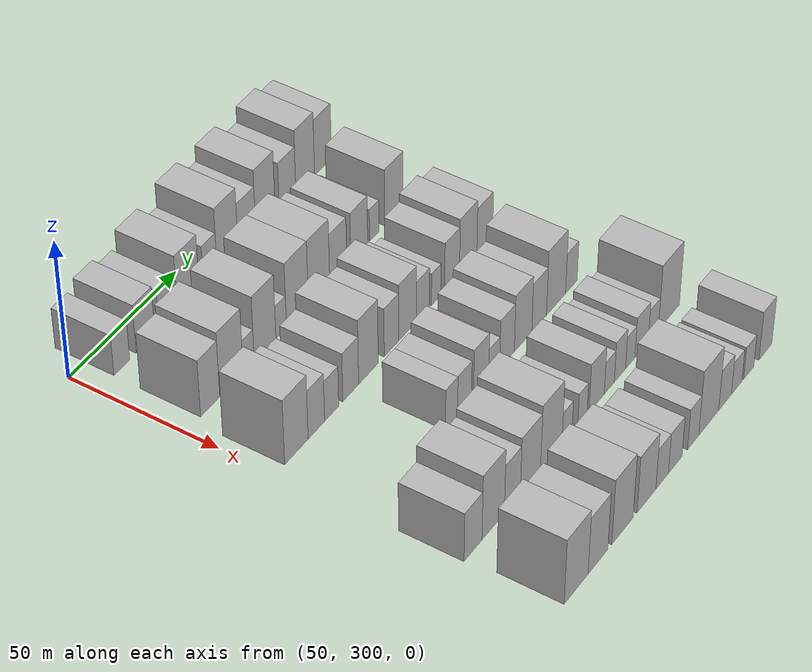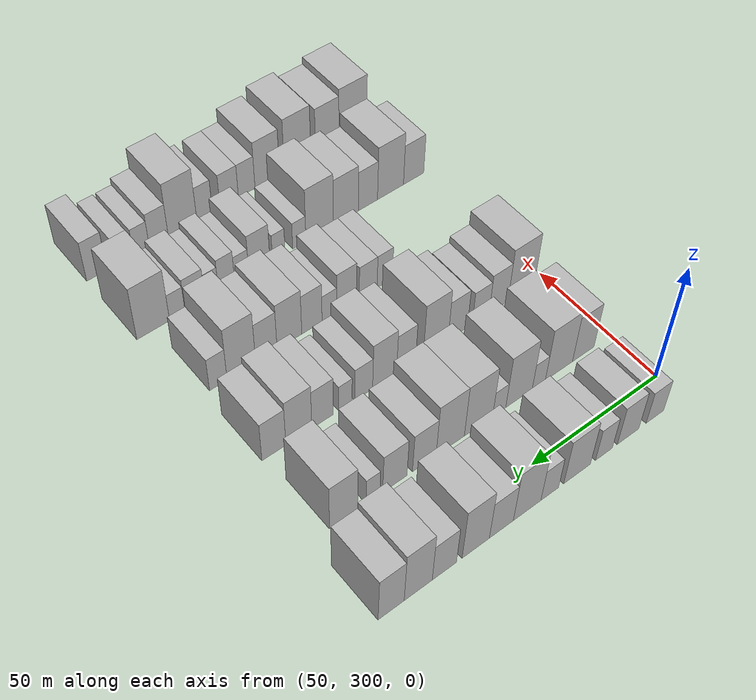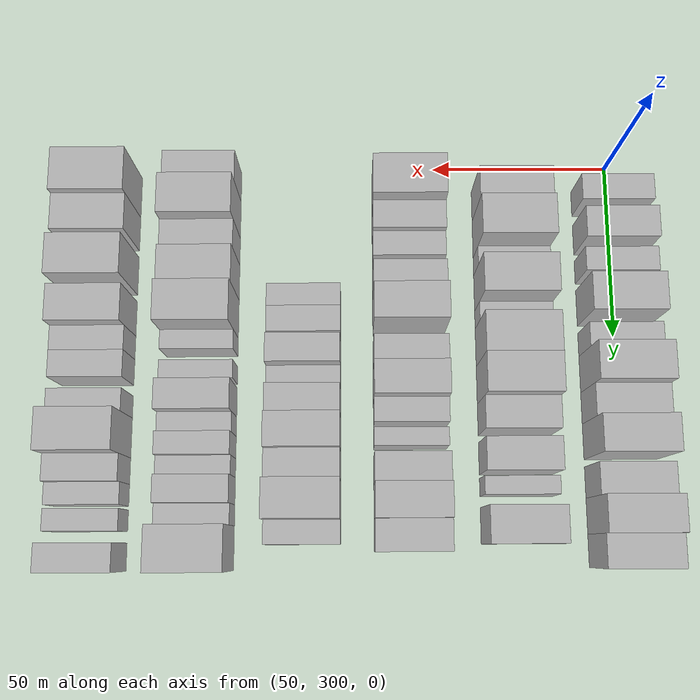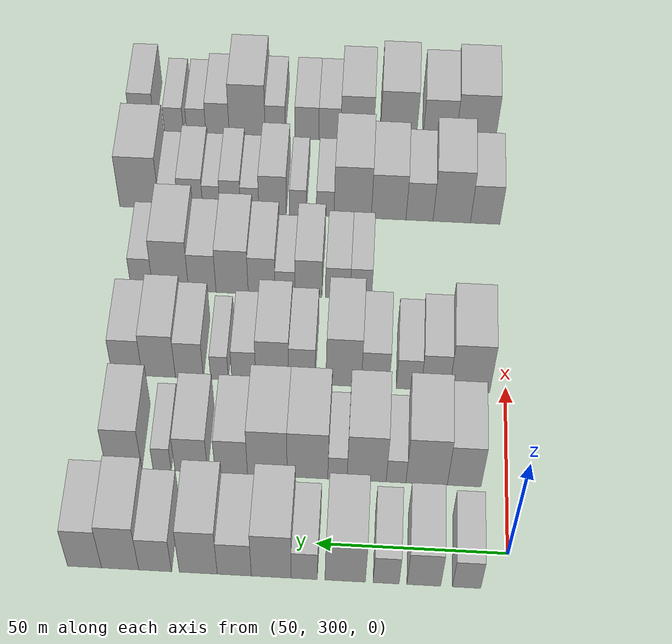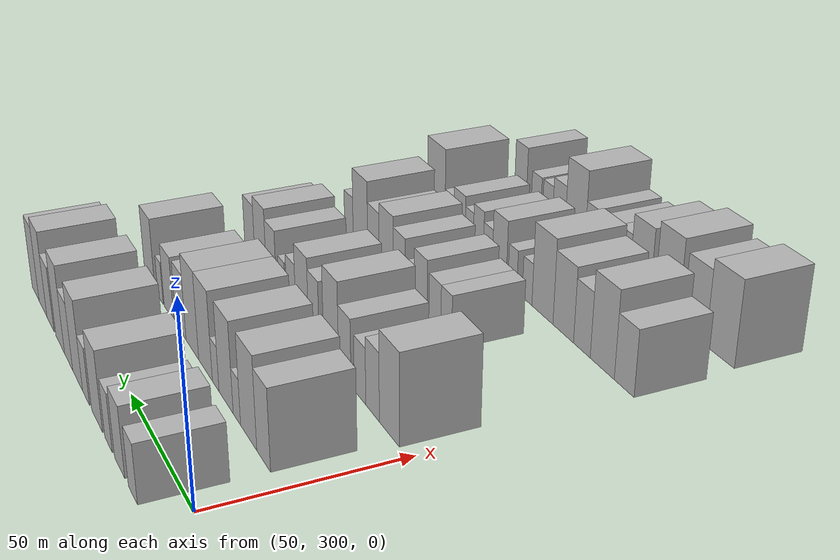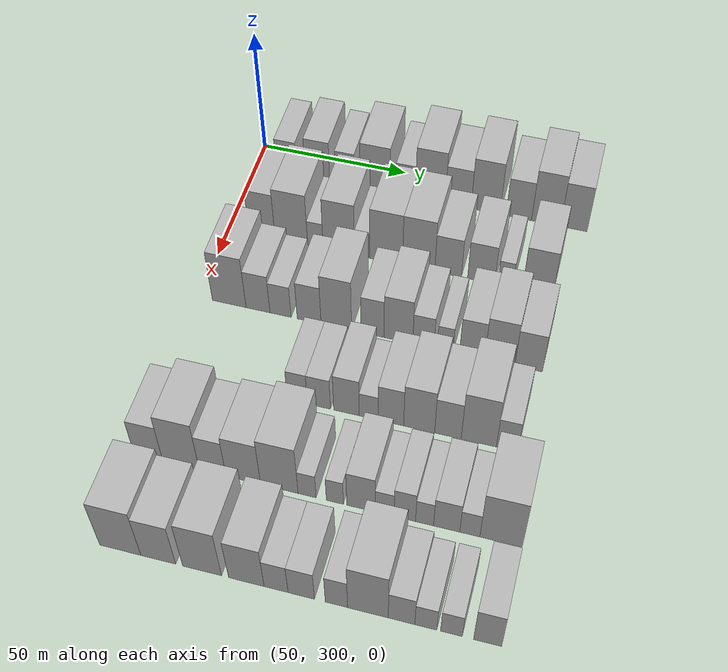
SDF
<sdf version="1.6">
 <world name="default">
  <model name="building_96">
   <static>1</static>
   <pose>50.0000 310.7664 0 0.000000 0.000000 0.000000</pose>
   <link name="link">
    <pose>0 0 7.50 0 0 0</pose>
    <collision name="collision"><geometry><box><size>20.0000 7.2658 15.0000</size></box></geometry></collision>
    <visual name="visual">
     <cast_shadows>0</cast_shadows>
     <geometry><box><size>20.0000 7.2658 15.0000</size></box></geometry>
     <material>
      <script>
       <uri>model://HANNAS_wall/materials/scripts</uri>
       <uri>model://HANNAS_wall/materials/textures</uri>
       <name>vrc/HANNAS_wall</name>
      </script>
     </material>
    </visual>
   </link>
  </model>
  <model name="building_97">
   <static>1</static>
   <pose>50.0000 321.7417 0 0.000000 0.000000 0.000000</pose>
   <link name="link">
    <pose>0 0 9.00 0 0 0</pose>
    <collision name="collision"><geometry><box><size>20.0000 8.6847 18.0000</size></box></geometry></collision>
    <visual name="visual">
     <cast_shadows>0</cast_shadows>
     <geometry><box><size>20.0000 8.6847 18.0000</size></box></geometry>
     <material>
      <script>
       <uri>model://HANNAS_wall/materials/scripts</uri>
       <uri>model://HANNAS_wall/materials/textures</uri>
       <name>vrc/HANNAS_wall</name>
      </script>
     </material>
    </visual>
   </link>
  </model>
  <model name="building_98">
   <static>1</static>
   <pose>50.0000 331.4283 0 0.000000 0.000000 0.000000</pose>
   <link name="link">
    <pose>0 0 7.50 0 0 0</pose>
    <collision name="collision"><geometry><box><size>20.0000 6.6887 15.0000</size></box></geometry></collision>
    <visual name="visual">
     <cast_shadows>0</cast_shadows>
     <geometry><box><size>20.0000 6.6887 15.0000</size></box></geometry>
     <material>
      <script>
       <uri>model://HANNAS_wall/materials/scripts</uri>
       <uri>model://HANNAS_wall/materials/textures</uri>
       <name>vrc/HANNAS_wall</name>
      </script>
     </material>
    </visual>
   </link>
  </model>
  <model name="building_99">
   <static>1</static>
   <pose>50.0000 341.9598 0 0.000000 0.000000 0.000000</pose>
   <link name="link">
    <pose>0 0 10.50 0 0 0</pose>
    <collision name="collision"><geometry><box><size>20.0000 10.3742 21.0000</size></box></geometry></collision>
    <visual name="visual">
     <cast_shadows>0</cast_shadows>
     <geometry><box><size>20.0000 10.3742 21.0000</size></box></geometry>
     <material>
      <script>
       <uri>model://HANNAS_wall/materials/scripts</uri>
       <uri>model://HANNAS_wall/materials/textures</uri>
       <name>vrc/HANNAS_wall</name>
      </script>
     </material>
    </visual>
   </link>
  </model>
  <model name="building_100">
   <static>1</static>
   <pose>50.0000 352.5078 0 0.000000 0.000000 0.000000</pose>
   <link name="link">
    <pose>0 0 7.50 0 0 0</pose>
    <collision name="collision"><geometry><box><size>20.0000 6.7218 15.0000</size></box></geometry></collision>
    <visual name="visual">
     <cast_shadows>0</cast_shadows>
     <geometry><box><size>20.0000 6.7218 15.0000</size></box></geometry>
     <material>
      <script>
       <uri>model://HANNAS_wall/materials/scripts</uri>
       <uri>model://HANNAS_wall/materials/textures</uri>
       <name>vrc/HANNAS_wall</name>
      </script>
     </material>
    </visual>
   </link>
  </model>
  <model name="building_101">
   <static>1</static>
   <pose>50.0000 361.0179 0 0.000000 0.000000 0.000000</pose>
   <link name="link">
    <pose>0 0 12.00 0 0 0</pose>
    <collision name="collision"><geometry><box><size>20.0000 10.2985 24.0000</size></box></geometry></collision>
    <visual name="visual">
     <cast_shadows>0</cast_shadows>
     <geometry><box><size>20.0000 10.2985 24.0000</size></box></geometry>
     <material>
      <script>
       <uri>model://HANNAS_wall/materials/scripts</uri>
       <uri>model://HANNAS_wall/materials/textures</uri>
       <name>vrc/HANNAS_wall</name>
      </script>
     </material>
    </visual>
   </link>
  </model>
  <model name="building_102">
   <static>1</static>
   <pose>50.0000 370.5619 0 0.000000 0.000000 0.000000</pose>
   <link name="link">
    <pose>0 0 9.00 0 0 0</pose>
    <collision name="collision"><geometry><box><size>20.0000 8.7894 18.0000</size></box></geometry></collision>
    <visual name="visual">
     <cast_shadows>0</cast_shadows>
     <geometry><box><size>20.0000 8.7894 18.0000</size></box></geometry>
     <material>
      <script>
       <uri>model://HANNAS_wall/materials/scripts</uri>
       <uri>model://HANNAS_wall/materials/textures</uri>
       <name>vrc/HANNAS_wall</name>
      </script>
     </material>
    </visual>
   </link>
  </model>
  <model name="building_103">
   <static>1</static>
   <pose>50.0000 379.8690 0 0.000000 0.000000 0.000000</pose>
   <link name="link">
    <pose>0 0 12.00 0 0 0</pose>
    <collision name="collision"><geometry><box><size>20.0000 9.8248 24.0000</size></box></geometry></collision>
    <visual name="visual">
     <cast_shadows>0</cast_shadows>
     <geometry><box><size>20.0000 9.8248 24.0000</size></box></geometry>
     <material>
      <script>
       <uri>model://HANNAS_wall/materials/scripts</uri>
       <uri>model://HANNAS_wall/materials/textures</uri>
       <name>vrc/HANNAS_wall</name>
      </script>
     </material>
    </visual>
   </link>
  </model>
  <model name="building_104">
   <static>1</static>
   <pose>50.0000 391.0441 0 0.000000 0.000000 0.000000</pose>
   <link name="link">
    <pose>0 0 9.00 0 0 0</pose>
    <collision name="collision"><geometry><box><size>20.0000 8.5254 18.0000</size></box></geometry></collision>
    <visual name="visual">
     <cast_shadows>0</cast_shadows>
     <geometry><box><size>20.0000 8.5254 18.0000</size></box></geometry>
     <material>
      <script>
       <uri>model://HANNAS_wall/materials/scripts</uri>
       <uri>model://HANNAS_wall/materials/textures</uri>
       <name>vrc/HANNAS_wall</name>
      </script>
     </material>
    </visual>
   </link>
  </model>
  <model name="building_105">
   <static>1</static>
   <pose>50.0000 400.1430 0 0.000000 0.000000 0.000000</pose>
   <link name="link">
    <pose>0 0 12.00 0 0 0</pose>
    <collision name="collision"><geometry><box><size>20.0000 9.6725 24.0000</size></box></geometry></collision>
    <visual name="visual">
     <cast_shadows>0</cast_shadows>
     <geometry><box><size>20.0000 9.6725 24.0000</size></box></geometry>
     <material>
      <script>
       <uri>model://HANNAS_wall/materials/scripts</uri>
       <uri>model://HANNAS_wall/materials/textures</uri>
       <name>vrc/HANNAS_wall</name>
      </script>
     </material>
    </visual>
   </link>
  </model>
  <model name="building_106">
   <static>1</static>
   <pose>50.0000 409.3942 0 0.000000 0.000000 0.000000</pose>
   <link name="link">
    <pose>0 0 10.50 0 0 0</pose>
    <collision name="collision"><geometry><box><size>20.0000 8.8299 21.0000</size></box></geometry></collision>
    <visual name="visual">
     <cast_shadows>0</cast_shadows>
     <geometry><box><size>20.0000 8.8299 21.0000</size></box></geometry>
     <material>
      <script>
       <uri>model://HANNAS_wall/materials/scripts</uri>
       <uri>model://HANNAS_wall/materials/textures</uri>
       <name>vrc/HANNAS_wall</name>
      </script>
     </material>
    </visual>
   </link>
  </model>
  <model name="building_208">
   <static>1</static>
   <pose>79.0000 311.4381 0 0.000000 0.000000 0.000000</pose>
   <link name="link">
    <pose>0 0 10.50 0 0 0</pose>
    <collision name="collision"><geometry><box><size>20.0000 8.9653 21.0000</size></box></geometry></collision>
    <visual name="visual">
     <cast_shadows>0</cast_shadows>
     <geometry><box><size>20.0000 8.9653 21.0000</size></box></geometry>
     <material>
      <script>
       <uri>model://HANNAS_wall/materials/scripts</uri>
       <uri>model://HANNAS_wall/materials/textures</uri>
       <name>vrc/HANNAS_wall</name>
      </script>
     </material>
    </visual>
   </link>
  </model>
  <model name="building_209">
   <static>1</static>
   <pose>79.0000 321.4525 0 0.000000 0.000000 0.000000</pose>
   <link name="link">
    <pose>0 0 12.00 0 0 0</pose>
    <collision name="collision"><geometry><box><size>20.0000 11.0635 24.0000</size></box></geometry></collision>
    <visual name="visual">
     <cast_shadows>0</cast_shadows>
     <geometry><box><size>20.0000 11.0635 24.0000</size></box></geometry>
     <material>
      <script>
       <uri>model://HANNAS_wall/materials/scripts</uri>
       <uri>model://HANNAS_wall/materials/textures</uri>
       <name>vrc/HANNAS_wall</name>
      </script>
     </material>
    </visual>
   </link>
  </model>
  <model name="building_210">
   <static>1</static>
   <pose>79.0000 329.6152 0 0.000000 0.000000 0.000000</pose>
   <link name="link">
    <pose>0 0 6.00 0 0 0</pose>
    <collision name="collision"><geometry><box><size>20.0000 5.2619 12.0000</size></box></geometry></collision>
    <visual name="visual">
     <cast_shadows>0</cast_shadows>
     <geometry><box><size>20.0000 5.2619 12.0000</size></box></geometry>
     <material>
      <script>
       <uri>model://HANNAS_wall/materials/scripts</uri>
       <uri>model://HANNAS_wall/materials/textures</uri>
       <name>vrc/HANNAS_wall</name>
      </script>
     </material>
    </visual>
   </link>
  </model>
  <model name="building_211">
   <static>1</static>
   <pose>79.0000 337.4931 0 0.000000 0.000000 0.000000</pose>
   <link name="link">
    <pose>0 0 12.00 0 0 0</pose>
    <collision name="collision"><geometry><box><size>20.0000 10.4937 24.0000</size></box></geometry></collision>
    <visual name="visual">
     <cast_shadows>0</cast_shadows>
     <geometry><box><size>20.0000 10.4937 24.0000</size></box></geometry>
     <material>
      <script>
       <uri>model://HANNAS_wall/materials/scripts</uri>
       <uri>model://HANNAS_wall/materials/textures</uri>
       <name>vrc/HANNAS_wall</name>
      </script>
     </material>
    </visual>
   </link>
  </model>
  <model name="building_212">
   <static>1</static>
   <pose>79.0000 345.2966 0 0.000000 0.000000 0.000000</pose>
   <link name="link">
    <pose>0 0 6.00 0 0 0</pose>
    <collision name="collision"><geometry><box><size>20.0000 5.1133 12.0000</size></box></geometry></collision>
    <visual name="visual">
     <cast_shadows>0</cast_shadows>
     <geometry><box><size>20.0000 5.1133 12.0000</size></box></geometry>
     <material>
      <script>
       <uri>model://HANNAS_wall/materials/scripts</uri>
       <uri>model://HANNAS_wall/materials/textures</uri>
       <name>vrc/HANNAS_wall</name>
      </script>
     </material>
    </visual>
   </link>
  </model>
  <model name="building_213">
   <static>1</static>
   <pose>79.0000 353.2895 0 0.000000 0.000000 0.000000</pose>
   <link name="link">
    <pose>0 0 12.00 0 0 0</pose>
    <collision name="collision"><geometry><box><size>20.0000 10.8726 24.0000</size></box></geometry></collision>
    <visual name="visual">
     <cast_shadows>0</cast_shadows>
     <geometry><box><size>20.0000 10.8726 24.0000</size></box></geometry>
     <material>
      <script>
       <uri>model://HANNAS_wall/materials/scripts</uri>
       <uri>model://HANNAS_wall/materials/textures</uri>
       <name>vrc/HANNAS_wall</name>
      </script>
     </material>
    </visual>
   </link>
  </model>
  <model name="building_214">
   <static>1</static>
   <pose>79.0000 364.0430 0 0.000000 0.000000 0.000000</pose>
   <link name="link">
    <pose>0 0 12.00 0 0 0</pose>
    <collision name="collision"><geometry><box><size>20.0000 10.6344 24.0000</size></box></geometry></collision>
    <visual name="visual">
     <cast_shadows>0</cast_shadows>
     <geometry><box><size>20.0000 10.6344 24.0000</size></box></geometry>
     <material>
      <script>
       <uri>model://HANNAS_wall/materials/scripts</uri>
       <uri>model://HANNAS_wall/materials/textures</uri>
       <name>vrc/HANNAS_wall</name>
      </script>
     </material>
    </visual>
   </link>
  </model>
  <model name="building_215">
   <static>1</static>
   <pose>79.0000 373.7148 0 0.000000 0.000000 0.000000</pose>
   <link name="link">
    <pose>0 0 9.00 0 0 0</pose>
    <collision name="collision"><geometry><box><size>20.0000 8.7094 18.0000</size></box></geometry></collision>
    <visual name="visual">
     <cast_shadows>0</cast_shadows>
     <geometry><box><size>20.0000 8.7094 18.0000</size></box></geometry>
     <material>
      <script>
       <uri>model://HANNAS_wall/materials/scripts</uri>
       <uri>model://HANNAS_wall/materials/textures</uri>
       <name>vrc/HANNAS_wall</name>
      </script>
     </material>
    </visual>
   </link>
  </model>
  <model name="building_216">
   <static>1</static>
   <pose>79.0000 384.4638 0 0.000000 0.000000 0.000000</pose>
   <link name="link">
    <pose>0 0 9.00 0 0 0</pose>
    <collision name="collision"><geometry><box><size>20.0000 8.7886 18.0000</size></box></geometry></collision>
    <visual name="visual">
     <cast_shadows>0</cast_shadows>
     <geometry><box><size>20.0000 8.7886 18.0000</size></box></geometry>
     <material>
      <script>
       <uri>model://HANNAS_wall/materials/scripts</uri>
       <uri>model://HANNAS_wall/materials/textures</uri>
       <name>vrc/HANNAS_wall</name>
      </script>
     </material>
    </visual>
   </link>
  </model>
  <model name="building_217">
   <static>1</static>
   <pose>79.0000 392.3045 0 0.000000 0.000000 0.000000</pose>
   <link name="link">
    <pose>0 0 6.00 0 0 0</pose>
    <collision name="collision"><geometry><box><size>20.0000 4.8927 12.0000</size></box></geometry></collision>
    <visual name="visual">
     <cast_shadows>0</cast_shadows>
     <geometry><box><size>20.0000 4.8927 12.0000</size></box></geometry>
     <material>
      <script>
       <uri>model://HANNAS_wall/materials/scripts</uri>
       <uri>model://HANNAS_wall/materials/textures</uri>
       <name>vrc/HANNAS_wall</name>
      </script>
     </material>
    </visual>
   </link>
  </model>
  <model name="building_218">
   <static>1</static>
   <pose>79.0000 402.6350 0 0.000000 0.000000 0.000000</pose>
   <link name="link">
    <pose>0 0 10.50 0 0 0</pose>
    <collision name="collision"><geometry><box><size>20.0000 9.7683 21.0000</size></box></geometry></collision>
    <visual name="visual">
     <cast_shadows>0</cast_shadows>
     <geometry><box><size>20.0000 9.7683 21.0000</size></box></geometry>
     <material>
      <script>
       <uri>model://HANNAS_wall/materials/scripts</uri>
       <uri>model://HANNAS_wall/materials/textures</uri>
       <name>vrc/HANNAS_wall</name>
      </script>
     </material>
    </visual>
   </link>
  </model>
  <model name="building_324">
   <static>1</static>
   <pose>108.0000 310.0251 0 0.000000 0.000000 0.000000</pose>
   <link name="link">
    <pose>0 0 12.00 0 0 0</pose>
    <collision name="collision"><geometry><box><size>20.0000 11.1220 24.0000</size></box></geometry></collision>
    <visual name="visual">
     <cast_shadows>0</cast_shadows>
     <geometry><box><size>20.0000 11.1220 24.0000</size></box></geometry>
     <material>
      <script>
       <uri>model://HANNAS_wall/materials/scripts</uri>
       <uri>model://HANNAS_wall/materials/textures</uri>
       <name>vrc/HANNAS_wall</name>
      </script>
     </material>
    </visual>
   </link>
  </model>
  <model name="building_325">
   <static>1</static>
   <pose>108.0000 319.5073 0 0.000000 0.000000 0.000000</pose>
   <link name="link">
    <pose>0 0 9.00 0 0 0</pose>
    <collision name="collision"><geometry><box><size>20.0000 7.8424 18.0000</size></box></geometry></collision>
    <visual name="visual">
     <cast_shadows>0</cast_shadows>
     <geometry><box><size>20.0000 7.8424 18.0000</size></box></geometry>
     <material>
      <script>
       <uri>model://HANNAS_wall/materials/scripts</uri>
       <uri>model://HANNAS_wall/materials/textures</uri>
       <name>vrc/HANNAS_wall</name>
      </script>
     </material>
    </visual>
   </link>
  </model>
  <model name="building_326">
   <static>1</static>
   <pose>108.0000 326.8674 0 0.000000 0.000000 0.000000</pose>
   <link name="link">
    <pose>0 0 7.50 0 0 0</pose>
    <collision name="collision"><geometry><box><size>20.0000 6.8778 15.0000</size></box></geometry></collision>
    <visual name="visual">
     <cast_shadows>0</cast_shadows>
     <geometry><box><size>20.0000 6.8778 15.0000</size></box></geometry>
     <material>
      <script>
       <uri>model://HANNAS_wall/materials/scripts</uri>
       <uri>model://HANNAS_wall/materials/textures</uri>
       <name>vrc/HANNAS_wall</name>
      </script>
     </material>
    </visual>
   </link>
  </model>
  <model name="building_327">
   <static>1</static>
   <pose>108.0000 336.1593 0 0.000000 0.000000 0.000000</pose>
   <link name="link">
    <pose>0 0 9.00 0 0 0</pose>
    <collision name="collision"><geometry><box><size>20.0000 7.7060 18.0000</size></box></geometry></collision>
    <visual name="visual">
     <cast_shadows>0</cast_shadows>
     <geometry><box><size>20.0000 7.7060 18.0000</size></box></geometry>
     <material>
      <script>
       <uri>model://HANNAS_wall/materials/scripts</uri>
       <uri>model://HANNAS_wall/materials/textures</uri>
       <name>vrc/HANNAS_wall</name>
      </script>
     </material>
    </visual>
   </link>
  </model>
  <model name="building_328">
   <static>1</static>
   <pose>108.0000 344.9060 0 0.000000 0.000000 0.000000</pose>
   <link name="link">
    <pose>0 0 12.00 0 0 0</pose>
    <collision name="collision"><geometry><box><size>20.0000 9.7872 24.0000</size></box></geometry></collision>
    <visual name="visual">
     <cast_shadows>0</cast_shadows>
     <geometry><box><size>20.0000 9.7872 24.0000</size></box></geometry>
     <material>
      <script>
       <uri>model://HANNAS_wall/materials/scripts</uri>
       <uri>model://HANNAS_wall/materials/textures</uri>
       <name>vrc/HANNAS_wall</name>
      </script>
     </material>
    </visual>
   </link>
  </model>
  <model name="building_329">
   <static>1</static>
   <pose>108.0000 356.4631 0 0.000000 0.000000 0.000000</pose>
   <link name="link">
    <pose>0 0 9.00 0 0 0</pose>
    <collision name="collision"><geometry><box><size>20.0000 7.3270 18.0000</size></box></geometry></collision>
    <visual name="visual">
     <cast_shadows>0</cast_shadows>
     <geometry><box><size>20.0000 7.3270 18.0000</size></box></geometry>
     <material>
      <script>
       <uri>model://HANNAS_wall/materials/scripts</uri>
       <uri>model://HANNAS_wall/materials/textures</uri>
       <name>vrc/HANNAS_wall</name>
      </script>
     </material>
    </visual>
   </link>
  </model>
  <model name="building_330">
   <static>1</static>
   <pose>108.0000 364.6842 0 0.000000 0.000000 0.000000</pose>
   <link name="link">
    <pose>0 0 10.50 0 0 0</pose>
    <collision name="collision"><geometry><box><size>20.0000 9.1152 21.0000</size></box></geometry></collision>
    <visual name="visual">
     <cast_shadows>0</cast_shadows>
     <geometry><box><size>20.0000 9.1152 21.0000</size></box></geometry>
     <material>
      <script>
       <uri>model://HANNAS_wall/materials/scripts</uri>
       <uri>model://HANNAS_wall/materials/textures</uri>
       <name>vrc/HANNAS_wall</name>
      </script>
     </material>
    </visual>
   </link>
  </model>
  <model name="building_331">
   <static>1</static>
   <pose>108.0000 372.5841 0 0.000000 0.000000 0.000000</pose>
   <link name="link">
    <pose>0 0 7.50 0 0 0</pose>
    <collision name="collision"><geometry><box><size>20.0000 6.6846 15.0000</size></box></geometry></collision>
    <visual name="visual">
     <cast_shadows>0</cast_shadows>
     <geometry><box><size>20.0000 6.6846 15.0000</size></box></geometry>
     <material>
      <script>
       <uri>model://HANNAS_wall/materials/scripts</uri>
       <uri>model://HANNAS_wall/materials/textures</uri>
       <name>vrc/HANNAS_wall</name>
      </script>
     </material>
    </visual>
   </link>
  </model>
  <model name="building_332">
   <static>1</static>
   <pose>108.0000 379.3864 0 0.000000 0.000000 0.000000</pose>
   <link name="link">
    <pose>0 0 6.00 0 0 0</pose>
    <collision name="collision"><geometry><box><size>20.0000 4.9201 12.0000</size></box></geometry></collision>
    <visual name="visual">
     <cast_shadows>0</cast_shadows>
     <geometry><box><size>20.0000 4.9201 12.0000</size></box></geometry>
     <material>
      <script>
       <uri>model://HANNAS_wall/materials/scripts</uri>
       <uri>model://HANNAS_wall/materials/textures</uri>
       <name>vrc/HANNAS_wall</name>
      </script>
     </material>
    </visual>
   </link>
  </model>
  <model name="building_333">
   <static>1</static>
   <pose>108.0000 387.7596 0 0.000000 0.000000 0.000000</pose>
   <link name="link">
    <pose>0 0 9.00 0 0 0</pose>
    <collision name="collision"><geometry><box><size>20.0000 7.8263 18.0000</size></box></geometry></collision>
    <visual name="visual">
     <cast_shadows>0</cast_shadows>
     <geometry><box><size>20.0000 7.8263 18.0000</size></box></geometry>
     <material>
      <script>
       <uri>model://HANNAS_wall/materials/scripts</uri>
       <uri>model://HANNAS_wall/materials/textures</uri>
       <name>vrc/HANNAS_wall</name>
      </script>
     </material>
    </visual>
   </link>
  </model>
  <model name="building_334">
   <static>1</static>
   <pose>108.0000 396.3158 0 0.000000 0.000000 0.000000</pose>
   <link name="link">
    <pose>0 0 10.50 0 0 0</pose>
    <collision name="collision"><geometry><box><size>20.0000 9.2860 21.0000</size></box></geometry></collision>
    <visual name="visual">
     <cast_shadows>0</cast_shadows>
     <geometry><box><size>20.0000 9.2860 21.0000</size></box></geometry>
     <material>
      <script>
       <uri>model://HANNAS_wall/materials/scripts</uri>
       <uri>model://HANNAS_wall/materials/textures</uri>
       <name>vrc/HANNAS_wall</name>
      </script>
     </material>
    </visual>
   </link>
  </model>
  <model name="building_335">
   <static>1</static>
   <pose>108.0000 405.1767 0 0.000000 0.000000 0.000000</pose>
   <link name="link">
    <pose>0 0 9.00 0 0 0</pose>
    <collision name="collision"><geometry><box><size>20.0000 8.4359 18.0000</size></box></geometry></collision>
    <visual name="visual">
     <cast_shadows>0</cast_shadows>
     <geometry><box><size>20.0000 8.4359 18.0000</size></box></geometry>
     <material>
      <script>
       <uri>model://HANNAS_wall/materials/scripts</uri>
       <uri>model://HANNAS_wall/materials/textures</uri>
       <name>vrc/HANNAS_wall</name>
      </script>
     </material>
    </visual>
   </link>
  </model>
  <model name="building_441">
   <static>1</static>
   <pose>137.0000 341.1910 0 0.000000 0.000000 0.000000</pose>
   <link name="link">
    <pose>0 0 7.50 0 0 0</pose>
    <collision name="collision"><geometry><box><size>20.0000 6.1512 15.0000</size></box></geometry></collision>
    <visual name="visual">
     <cast_shadows>0</cast_shadows>
     <geometry><box><size>20.0000 6.1512 15.0000</size></box></geometry>
     <material>
      <script>
       <uri>model://HANNAS_wall/materials/scripts</uri>
       <uri>model://HANNAS_wall/materials/textures</uri>
       <name>vrc/HANNAS_wall</name>
      </script>
     </material>
    </visual>
   </link>
  </model>
  <model name="building_442">
   <static>1</static>
   <pose>137.0000 347.8215 0 0.000000 0.000000 0.000000</pose>
   <link name="link">
    <pose>0 0 7.50 0 0 0</pose>
    <collision name="collision"><geometry><box><size>20.0000 7.1098 15.0000</size></box></geometry></collision>
    <visual name="visual">
     <cast_shadows>0</cast_shadows>
     <geometry><box><size>20.0000 7.1098 15.0000</size></box></geometry>
     <material>
      <script>
       <uri>model://HANNAS_wall/materials/scripts</uri>
       <uri>model://HANNAS_wall/materials/textures</uri>
       <name>vrc/HANNAS_wall</name>
      </script>
     </material>
    </visual>
   </link>
  </model>
  <model name="building_443">
   <static>1</static>
   <pose>137.0000 356.2711 0 0.000000 0.000000 0.000000</pose>
   <link name="link">
    <pose>0 0 9.00 0 0 0</pose>
    <collision name="collision"><geometry><box><size>20.0000 7.7894 18.0000</size></box></geometry></collision>
    <visual name="visual">
     <cast_shadows>0</cast_shadows>
     <geometry><box><size>20.0000 7.7894 18.0000</size></box></geometry>
     <material>
      <script>
       <uri>model://HANNAS_wall/materials/scripts</uri>
       <uri>model://HANNAS_wall/materials/textures</uri>
       <name>vrc/HANNAS_wall</name>
      </script>
     </material>
    </visual>
   </link>
  </model>
  <model name="building_444">
   <static>1</static>
   <pose>137.0000 363.0032 0 0.000000 0.000000 0.000000</pose>
   <link name="link">
    <pose>0 0 6.00 0 0 0</pose>
    <collision name="collision"><geometry><box><size>20.0000 5.6748 12.0000</size></box></geometry></collision>
    <visual name="visual">
     <cast_shadows>0</cast_shadows>
     <geometry><box><size>20.0000 5.6748 12.0000</size></box></geometry>
     <material>
      <script>
       <uri>model://HANNAS_wall/materials/scripts</uri>
       <uri>model://HANNAS_wall/materials/textures</uri>
       <name>vrc/HANNAS_wall</name>
      </script>
     </material>
    </visual>
   </link>
  </model>
  <model name="building_445">
   <static>1</static>
   <pose>137.0000 369.7134 0 0.000000 0.000000 0.000000</pose>
   <link name="link">
    <pose>0 0 9.00 0 0 0</pose>
    <collision name="collision"><geometry><box><size>20.0000 7.7456 18.0000</size></box></geometry></collision>
    <visual name="visual">
     <cast_shadows>0</cast_shadows>
     <geometry><box><size>20.0000 7.7456 18.0000</size></box></geometry>
     <material>
      <script>
       <uri>model://HANNAS_wall/materials/scripts</uri>
       <uri>model://HANNAS_wall/materials/textures</uri>
       <name>vrc/HANNAS_wall</name>
      </script>
     </material>
    </visual>
   </link>
  </model>
  <model name="building_446">
   <static>1</static>
   <pose>137.0000 378.2322 0 0.000000 0.000000 0.000000</pose>
   <link name="link">
    <pose>0 0 10.50 0 0 0</pose>
    <collision name="collision"><geometry><box><size>20.0000 9.2920 21.0000</size></box></geometry></collision>
    <visual name="visual">
     <cast_shadows>0</cast_shadows>
     <geometry><box><size>20.0000 9.2920 21.0000</size></box></geometry>
     <material>
      <script>
       <uri>model://HANNAS_wall/materials/scripts</uri>
       <uri>model://HANNAS_wall/materials/textures</uri>
       <name>vrc/HANNAS_wall</name>
      </script>
     </material>
    </visual>
   </link>
  </model>
  <model name="building_447">
   <static>1</static>
   <pose>137.0000 386.8344 0 0.000000 0.000000 0.000000</pose>
   <link name="link">
    <pose>0 0 9.00 0 0 0</pose>
    <collision name="collision"><geometry><box><size>20.0000 7.9124 18.0000</size></box></geometry></collision>
    <visual name="visual">
     <cast_shadows>0</cast_shadows>
     <geometry><box><size>20.0000 7.9124 18.0000</size></box></geometry>
     <material>
      <script>
       <uri>model://HANNAS_wall/materials/scripts</uri>
       <uri>model://HANNAS_wall/materials/textures</uri>
       <name>vrc/HANNAS_wall</name>
      </script>
     </material>
    </visual>
   </link>
  </model>
  <model name="building_448">
   <static>1</static>
   <pose>137.0000 395.9803 0 0.000000 0.000000 0.000000</pose>
   <link name="link">
    <pose>0 0 12.00 0 0 0</pose>
    <collision name="collision"><geometry><box><size>20.0000 10.3795 24.0000</size></box></geometry></collision>
    <visual name="visual">
     <cast_shadows>0</cast_shadows>
     <geometry><box><size>20.0000 10.3795 24.0000</size></box></geometry>
     <material>
      <script>
       <uri>model://HANNAS_wall/materials/scripts</uri>
       <uri>model://HANNAS_wall/materials/textures</uri>
       <name>vrc/HANNAS_wall</name>
      </script>
     </material>
    </visual>
   </link>
  </model>
  <model name="building_449">
   <static>1</static>
   <pose>137.0000 404.3230 0 0.000000 0.000000 0.000000</pose>
   <link name="link">
    <pose>0 0 7.50 0 0 0</pose>
    <collision name="collision"><geometry><box><size>20.0000 6.3058 15.0000</size></box></geometry></collision>
    <visual name="visual">
     <cast_shadows>0</cast_shadows>
     <geometry><box><size>20.0000 6.3058 15.0000</size></box></geometry>
     <material>
      <script>
       <uri>model://HANNAS_wall/materials/scripts</uri>
       <uri>model://HANNAS_wall/materials/textures</uri>
       <name>vrc/HANNAS_wall</name>
      </script>
     </material>
    </visual>
   </link>
  </model>
  <model name="building_545">
   <static>1</static>
   <pose>166.0000 305.3626 0 0.000000 0.000000 0.000000</pose>
   <link name="link">
    <pose>0 0 9.00 0 0 0</pose>
    <collision name="collision"><geometry><box><size>20.0000 8.7381 18.0000</size></box></geometry></collision>
    <visual name="visual">
     <cast_shadows>0</cast_shadows>
     <geometry><box><size>20.0000 8.7381 18.0000</size></box></geometry>
     <material>
      <script>
       <uri>model://HANNAS_wall/materials/scripts</uri>
       <uri>model://HANNAS_wall/materials/textures</uri>
       <name>vrc/HANNAS_wall</name>
      </script>
     </material>
    </visual>
   </link>
  </model>
  <model name="building_546">
   <static>1</static>
   <pose>166.0000 315.2730 0 0.000000 0.000000 0.000000</pose>
   <link name="link">
    <pose>0 0 12.00 0 0 0</pose>
    <collision name="collision"><geometry><box><size>20.0000 11.0827 24.0000</size></box></geometry></collision>
    <visual name="visual">
     <cast_shadows>0</cast_shadows>
     <geometry><box><size>20.0000 11.0827 24.0000</size></box></geometry>
     <material>
      <script>
       <uri>model://HANNAS_wall/materials/scripts</uri>
       <uri>model://HANNAS_wall/materials/textures</uri>
       <name>vrc/HANNAS_wall</name>
      </script>
     </material>
    </visual>
   </link>
  </model>
  <model name="building_547">
   <static>1</static>
   <pose>166.0000 324.8338 0 0.000000 0.000000 0.000000</pose>
   <link name="link">
    <pose>0 0 9.00 0 0 0</pose>
    <collision name="collision"><geometry><box><size>20.0000 8.0388 18.0000</size></box></geometry></collision>
    <visual name="visual">
     <cast_shadows>0</cast_shadows>
     <geometry><box><size>20.0000 8.0388 18.0000</size></box></geometry>
     <material>
      <script>
       <uri>model://HANNAS_wall/materials/scripts</uri>
       <uri>model://HANNAS_wall/materials/textures</uri>
       <name>vrc/HANNAS_wall</name>
      </script>
     </material>
    </visual>
   </link>
  </model>
  <model name="building_548">
   <static>1</static>
   <pose>166.0000 334.0132 0 0.000000 0.000000 0.000000</pose>
   <link name="link">
    <pose>0 0 10.50 0 0 0</pose>
    <collision name="collision"><geometry><box><size>20.0000 10.3200 21.0000</size></box></geometry></collision>
    <visual name="visual">
     <cast_shadows>0</cast_shadows>
     <geometry><box><size>20.0000 10.3200 21.0000</size></box></geometry>
     <material>
      <script>
       <uri>model://HANNAS_wall/materials/scripts</uri>
       <uri>model://HANNAS_wall/materials/textures</uri>
       <name>vrc/HANNAS_wall</name>
      </script>
     </material>
    </visual>
   </link>
  </model>
  <model name="building_549">
   <static>1</static>
   <pose>166.0000 344.7069 0 0.000000 0.000000 0.000000</pose>
   <link name="link">
    <pose>0 0 12.00 0 0 0</pose>
    <collision name="collision"><geometry><box><size>20.0000 11.0676 24.0000</size></box></geometry></collision>
    <visual name="visual">
     <cast_shadows>0</cast_shadows>
     <geometry><box><size>20.0000 11.0676 24.0000</size></box></geometry>
     <material>
      <script>
       <uri>model://HANNAS_wall/materials/scripts</uri>
       <uri>model://HANNAS_wall/materials/textures</uri>
       <name>vrc/HANNAS_wall</name>
      </script>
     </material>
    </visual>
   </link>
  </model>
  <model name="building_550">
   <static>1</static>
   <pose>166.0000 352.8768 0 0.000000 0.000000 0.000000</pose>
   <link name="link">
    <pose>0 0 6.00 0 0 0</pose>
    <collision name="collision"><geometry><box><size>20.0000 5.2722 12.0000</size></box></geometry></collision>
    <visual name="visual">
     <cast_shadows>0</cast_shadows>
     <geometry><box><size>20.0000 5.2722 12.0000</size></box></geometry>
     <material>
      <script>
       <uri>model://HANNAS_wall/materials/scripts</uri>
       <uri>model://HANNAS_wall/materials/textures</uri>
       <name>vrc/HANNAS_wall</name>
      </script>
     </material>
    </visual>
   </link>
  </model>
  <model name="building_551">
   <static>1</static>
   <pose>166.0000 360.9886 0 0.000000 0.000000 0.000000</pose>
   <link name="link">
    <pose>0 0 6.00 0 0 0</pose>
    <collision name="collision"><geometry><box><size>20.0000 4.9512 12.0000</size></box></geometry></collision>
    <visual name="visual">
     <cast_shadows>0</cast_shadows>
     <geometry><box><size>20.0000 4.9512 12.0000</size></box></geometry>
     <material>
      <script>
       <uri>model://HANNAS_wall/materials/scripts</uri>
       <uri>model://HANNAS_wall/materials/textures</uri>
       <name>vrc/HANNAS_wall</name>
      </script>
     </material>
    </visual>
   </link>
  </model>
  <model name="building_552">
   <static>1</static>
   <pose>166.0000 368.5443 0 0.000000 0.000000 0.000000</pose>
   <link name="link">
    <pose>0 0 9.00 0 0 0</pose>
    <collision name="collision"><geometry><box><size>20.0000 8.1603 18.0000</size></box></geometry></collision>
    <visual name="visual">
     <cast_shadows>0</cast_shadows>
     <geometry><box><size>20.0000 8.1603 18.0000</size></box></geometry>
     <material>
      <script>
       <uri>model://HANNAS_wall/materials/scripts</uri>
       <uri>model://HANNAS_wall/materials/textures</uri>
       <name>vrc/HANNAS_wall</name>
      </script>
     </material>
    </visual>
   </link>
  </model>
  <model name="building_553">
   <static>1</static>
   <pose>166.0000 375.3450 0 0.000000 0.000000 0.000000</pose>
   <link name="link">
    <pose>0 0 6.00 0 0 0</pose>
    <collision name="collision"><geometry><box><size>20.0000 5.4411 12.0000</size></box></geometry></collision>
    <visual name="visual">
     <cast_shadows>0</cast_shadows>
     <geometry><box><size>20.0000 5.4411 12.0000</size></box></geometry>
     <material>
      <script>
       <uri>model://HANNAS_wall/materials/scripts</uri>
       <uri>model://HANNAS_wall/materials/textures</uri>
       <name>vrc/HANNAS_wall</name>
      </script>
     </material>
    </visual>
   </link>
  </model>
  <model name="building_554">
   <static>1</static>
   <pose>166.0000 381.1377 0 0.000000 0.000000 0.000000</pose>
   <link name="link">
    <pose>0 0 7.50 0 0 0</pose>
    <collision name="collision"><geometry><box><size>20.0000 6.1443 15.0000</size></box></geometry></collision>
    <visual name="visual">
     <cast_shadows>0</cast_shadows>
     <geometry><box><size>20.0000 6.1443 15.0000</size></box></geometry>
     <material>
      <script>
       <uri>model://HANNAS_wall/materials/scripts</uri>
       <uri>model://HANNAS_wall/materials/textures</uri>
       <name>vrc/HANNAS_wall</name>
      </script>
     </material>
    </visual>
   </link>
  </model>
  <model name="building_555">
   <static>1</static>
   <pose>166.0000 386.7820 0 0.000000 0.000000 0.000000</pose>
   <link name="link">
    <pose>0 0 6.00 0 0 0</pose>
    <collision name="collision"><geometry><box><size>20.0000 5.1444 12.0000</size></box></geometry></collision>
    <visual name="visual">
     <cast_shadows>0</cast_shadows>
     <geometry><box><size>20.0000 5.1444 12.0000</size></box></geometry>
     <material>
      <script>
       <uri>model://HANNAS_wall/materials/scripts</uri>
       <uri>model://HANNAS_wall/materials/textures</uri>
       <name>vrc/HANNAS_wall</name>
      </script>
     </material>
    </visual>
   </link>
  </model>
  <model name="building_556">
   <static>1</static>
   <pose>166.0000 393.0511 0 0.000000 0.000000 0.000000</pose>
   <link name="link">
    <pose>0 0 7.50 0 0 0</pose>
    <collision name="collision"><geometry><box><size>20.0000 7.3938 15.0000</size></box></geometry></collision>
    <visual name="visual">
     <cast_shadows>0</cast_shadows>
     <geometry><box><size>20.0000 7.3938 15.0000</size></box></geometry>
     <material>
      <script>
       <uri>model://HANNAS_wall/materials/scripts</uri>
       <uri>model://HANNAS_wall/materials/textures</uri>
       <name>vrc/HANNAS_wall</name>
      </script>
     </material>
    </visual>
   </link>
  </model>
  <model name="building_557">
   <static>1</static>
   <pose>166.0000 399.5748 0 0.000000 0.000000 0.000000</pose>
   <link name="link">
    <pose>0 0 6.00 0 0 0</pose>
    <collision name="collision"><geometry><box><size>20.0000 5.6536 12.0000</size></box></geometry></collision>
    <visual name="visual">
     <cast_shadows>0</cast_shadows>
     <geometry><box><size>20.0000 5.6536 12.0000</size></box></geometry>
     <material>
      <script>
       <uri>model://HANNAS_wall/materials/scripts</uri>
       <uri>model://HANNAS_wall/materials/textures</uri>
       <name>vrc/HANNAS_wall</name>
      </script>
     </material>
    </visual>
   </link>
  </model>
  <model name="building_558">
   <static>1</static>
   <pose>166.0000 408.3284 0 0.000000 0.000000 0.000000</pose>
   <link name="link">
    <pose>0 0 12.00 0 0 0</pose>
    <collision name="collision"><geometry><box><size>20.0000 11.8537 24.0000</size></box></geometry></collision>
    <visual name="visual">
     <cast_shadows>0</cast_shadows>
     <geometry><box><size>20.0000 11.8537 24.0000</size></box></geometry>
     <material>
      <script>
       <uri>model://HANNAS_wall/materials/scripts</uri>
       <uri>model://HANNAS_wall/materials/textures</uri>
       <name>vrc/HANNAS_wall</name>
      </script>
     </material>
    </visual>
   </link>
  </model>
  <model name="building_662">
   <static>1</static>
   <pose>195.0000 308.3615 0 0.000000 0.000000 0.000000</pose>
   <link name="link">
    <pose>0 0 12.00 0 0 0</pose>
    <collision name="collision"><geometry><box><size>20.0000 11.9907 24.0000</size></box></geometry></collision>
    <visual name="visual">
     <cast_shadows>0</cast_shadows>
     <geometry><box><size>20.0000 11.9907 24.0000</size></box></geometry>
     <material>
      <script>
       <uri>model://HANNAS_wall/materials/scripts</uri>
       <uri>model://HANNAS_wall/materials/textures</uri>
       <name>vrc/HANNAS_wall</name>
      </script>
     </material>
    </visual>
   </link>
  </model>
  <model name="building_663">
   <static>1</static>
   <pose>195.0000 319.3954 0 0.000000 0.000000 0.000000</pose>
   <link name="link">
    <pose>0 0 10.50 0 0 0</pose>
    <collision name="collision"><geometry><box><size>20.0000 10.0771 21.0000</size></box></geometry></collision>
    <visual name="visual">
     <cast_shadows>0</cast_shadows>
     <geometry><box><size>20.0000 10.0771 21.0000</size></box></geometry>
     <material>
      <script>
       <uri>model://HANNAS_wall/materials/scripts</uri>
       <uri>model://HANNAS_wall/materials/textures</uri>
       <name>vrc/HANNAS_wall</name>
      </script>
     </material>
    </visual>
   </link>
  </model>
  <model name="building_664">
   <static>1</static>
   <pose>195.0000 331.9763 0 0.000000 0.000000 0.000000</pose>
   <link name="link">
    <pose>0 0 12.00 0 0 0</pose>
    <collision name="collision"><geometry><box><size>20.0000 11.0846 24.0000</size></box></geometry></collision>
    <visual name="visual">
     <cast_shadows>0</cast_shadows>
     <geometry><box><size>20.0000 11.0846 24.0000</size></box></geometry>
     <material>
      <script>
       <uri>model://HANNAS_wall/materials/scripts</uri>
       <uri>model://HANNAS_wall/materials/textures</uri>
       <name>vrc/HANNAS_wall</name>
      </script>
     </material>
    </visual>
   </link>
  </model>
  <model name="building_665">
   <static>1</static>
   <pose>195.0000 344.5362 0 0.000000 0.000000 0.000000</pose>
   <link name="link">
    <pose>0 0 10.50 0 0 0</pose>
    <collision name="collision"><geometry><box><size>20.0000 10.0353 21.0000</size></box></geometry></collision>
    <visual name="visual">
     <cast_shadows>0</cast_shadows>
     <geometry><box><size>20.0000 10.0353 21.0000</size></box></geometry>
     <material>
      <script>
       <uri>model://HANNAS_wall/materials/scripts</uri>
       <uri>model://HANNAS_wall/materials/textures</uri>
       <name>vrc/HANNAS_wall</name>
      </script>
     </material>
    </visual>
   </link>
  </model>
  <model name="building_666">
   <static>1</static>
   <pose>195.0000 352.9119 0 0.000000 0.000000 0.000000</pose>
   <link name="link">
    <pose>0 0 7.50 0 0 0</pose>
    <collision name="collision"><geometry><box><size>20.0000 6.7162 15.0000</size></box></geometry></collision>
    <visual name="visual">
     <cast_shadows>0</cast_shadows>
     <geometry><box><size>20.0000 6.7162 15.0000</size></box></geometry>
     <material>
      <script>
       <uri>model://HANNAS_wall/materials/scripts</uri>
       <uri>model://HANNAS_wall/materials/textures</uri>
       <name>vrc/HANNAS_wall</name>
      </script>
     </material>
    </visual>
   </link>
  </model>
  <model name="building_667">
   <static>1</static>
   <pose>195.0000 359.9438 0 0.000000 0.000000 0.000000</pose>
   <link name="link">
    <pose>0 0 7.50 0 0 0</pose>
    <collision name="collision"><geometry><box><size>20.0000 7.3477 15.0000</size></box></geometry></collision>
    <visual name="visual">
     <cast_shadows>0</cast_shadows>
     <geometry><box><size>20.0000 7.3477 15.0000</size></box></geometry>
     <material>
      <script>
       <uri>model://HANNAS_wall/materials/scripts</uri>
       <uri>model://HANNAS_wall/materials/textures</uri>
       <name>vrc/HANNAS_wall</name>
      </script>
     </material>
    </visual>
   </link>
  </model>
  <model name="building_668">
   <static>1</static>
   <pose>195.0000 369.6988 0 0.000000 0.000000 0.000000</pose>
   <link name="link">
    <pose>0 0 7.50 0 0 0</pose>
    <collision name="collision"><geometry><box><size>20.0000 6.1622 15.0000</size></box></geometry></collision>
    <visual name="visual">
     <cast_shadows>0</cast_shadows>
     <geometry><box><size>20.0000 6.1622 15.0000</size></box></geometry>
     <material>
      <script>
       <uri>model://HANNAS_wall/materials/scripts</uri>
       <uri>model://HANNAS_wall/materials/textures</uri>
       <name>vrc/HANNAS_wall</name>
      </script>
     </material>
    </visual>
   </link>
  </model>
  <model name="building_669">
   <static>1</static>
   <pose>195.0000 378.3217 0 0.000000 0.000000 0.000000</pose>
   <link name="link">
    <pose>0 0 12.00 0 0 0</pose>
    <collision name="collision"><geometry><box><size>20.0000 11.0837 24.0000</size></box></geometry></collision>
    <visual name="visual">
     <cast_shadows>0</cast_shadows>
     <geometry><box><size>20.0000 11.0837 24.0000</size></box></geometry>
     <material>
      <script>
       <uri>model://HANNAS_wall/materials/scripts</uri>
       <uri>model://HANNAS_wall/materials/textures</uri>
       <name>vrc/HANNAS_wall</name>
      </script>
     </material>
    </visual>
   </link>
  </model>
  <model name="building_670">
   <static>1</static>
   <pose>195.0000 387.4782 0 0.000000 0.000000 0.000000</pose>
   <link name="link">
    <pose>0 0 7.50 0 0 0</pose>
    <collision name="collision"><geometry><box><size>20.0000 7.2293 15.0000</size></box></geometry></collision>
    <visual name="visual">
     <cast_shadows>0</cast_shadows>
     <geometry><box><size>20.0000 7.2293 15.0000</size></box></geometry>
     <material>
      <script>
       <uri>model://HANNAS_wall/materials/scripts</uri>
       <uri>model://HANNAS_wall/materials/textures</uri>
       <name>vrc/HANNAS_wall</name>
      </script>
     </material>
    </visual>
   </link>
  </model>
  <model name="building_671">
   <static>1</static>
   <pose>195.0000 394.0528 0 0.000000 0.000000 0.000000</pose>
   <link name="link">
    <pose>0 0 6.00 0 0 0</pose>
    <collision name="collision"><geometry><box><size>20.0000 5.9198 12.0000</size></box></geometry></collision>
    <visual name="visual">
     <cast_shadows>0</cast_shadows>
     <geometry><box><size>20.0000 5.9198 12.0000</size></box></geometry>
     <material>
      <script>
       <uri>model://HANNAS_wall/materials/scripts</uri>
       <uri>model://HANNAS_wall/materials/textures</uri>
       <name>vrc/HANNAS_wall</name>
      </script>
     </material>
    </visual>
   </link>
  </model>
  <model name="building_672">
   <static>1</static>
   <pose>195.0000 400.9305 0 0.000000 0.000000 0.000000</pose>
   <link name="link">
    <pose>0 0 6.00 0 0 0</pose>
    <collision name="collision"><geometry><box><size>20.0000 5.8356 12.0000</size></box></geometry></collision>
    <visual name="visual">
     <cast_shadows>0</cast_shadows>
     <geometry><box><size>20.0000 5.8356 12.0000</size></box></geometry>
     <material>
      <script>
       <uri>model://HANNAS_wall/materials/scripts</uri>
       <uri>model://HANNAS_wall/materials/textures</uri>
       <name>vrc/HANNAS_wall</name>
      </script>
     </material>
    </visual>
   </link>
  </model>
  <model name="building_673">
   <static>1</static>
   <pose>195.0000 410.5820 0 0.000000 0.000000 0.000000</pose>
   <link name="link">
    <pose>0 0 9.00 0 0 0</pose>
    <collision name="collision"><geometry><box><size>20.0000 7.4674 18.0000</size></box></geometry></collision>
    <visual name="visual">
     <cast_shadows>0</cast_shadows>
     <geometry><box><size>20.0000 7.4674 18.0000</size></box></geometry>
     <material>
      <script>
       <uri>model://HANNAS_wall/materials/scripts</uri>
       <uri>model://HANNAS_wall/materials/textures</uri>
       <name>vrc/HANNAS_wall</name>
      </script>
     </material>
    </visual>
   </link>
  </model>
 </world>
</sdf>
